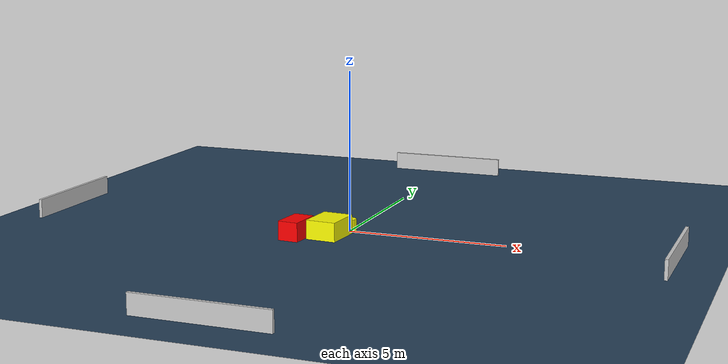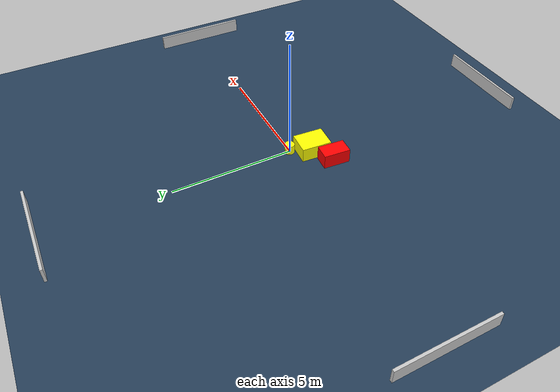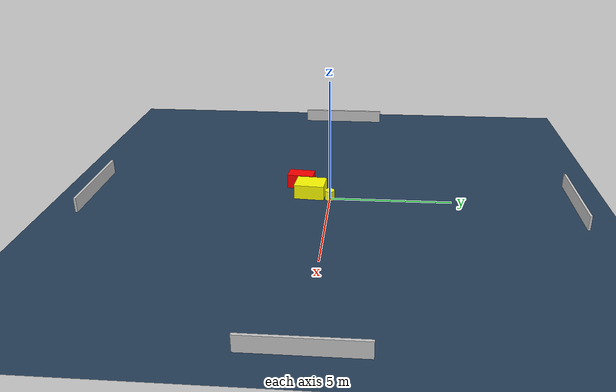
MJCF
<?xml version="1.0" ?>
<mujoco model="generated_environment">
  <option timestep="0.01" integrator="RK4" cone="elliptic"/>
  <default>
    <geom density="1"/>
  </default>
  <asset>
    <texture builtin="gradient" height="3072" name="skybox" rgb1="0.3 0.5 0.7" rgb2="0 0 0" type="skybox" width="512"/>
    <texture builtin="checker" height="300" name="groundplane" rgb1="0.2 0.3 0.4" rgb2="0.1 0.2 0.3" type="2d" width="300"/>
    <material name="groundplane" reflectance="0.2" texrepeat="5 5" texture="groundplane"/>
  </asset>
  <worldbody>
    <light dir="0 0 -1" directional="true" pos="0 0 1.5"/>
    <geom condim="3" friction="0.5 0.005 0.001" material="groundplane" name="floor" pos="0 0 0" size="0 0 0.05" type="plane"/>
    <body name="walls">
      <geom name="wall_1" condim="4" pos="-10.0 0.0 0.3" rgba="0.800000011920929 0.800000011920929 0.800000011920929 1.0" size="0.05 2.0 0.3" type="box"/>
      <geom name="wall_2" condim="4" pos="10.0 0.0 0.3" rgba="0.800000011920929 0.800000011920929 0.800000011920929 1.0" size="0.05 2.0 0.3" type="box"/>
      <geom name="wall_3" condim="4" pos="0.0 -10.0 0.3" rgba="0.800000011920929 0.800000011920929 0.800000011920929 1.0" size="2.0 0.05 0.3" type="box"/>
      <geom name="wall_4" condim="4" pos="0.0 10.0 0.3" rgba="0.800000011920929 0.800000011920929 0.800000011920929 1.0" size="2.0 0.05 0.3" type="box"/>
    </body>
    <body name="robot">
      <joint name="joint_x" type="slide" pos="0 0 0" axis="1 0 0"/>
      <joint name="joint_y" type="slide" pos="0 0 0" axis="0 1 0"/>
      <geom name="robot" type="cylinder" pos="0.0 0.0 0.2" size="0.2 0.2 0.0" mass="5.0" friction="1.0 0.005 0.0001" condim="4" rgba="1.0 1.0 0.0 1.0"/>
    </body>
    <body name="obstacle_1_movable">
      <geom name="obstacle_1_movable" condim="4" pos="-0.3523512997242288 -0.833666357574126 0.3" euler="0 0 266.01312657062505" friction="0.0 0.005 0.001" rgba="1.0 1.0 0.0 1.0" size="0.6195687685940352 0.477956846042064 0.3" type="box" mass="0.1"/>
      <joint type="free"/>
    </body>
    <body name="obstacle_2_static">
      <geom name="obstacle_2_static" condim="4" pos="-1.2482467996977302 -1.3215409382004797 0.3" euler="0 0 85.43723638901793" friction="0.0 0.005 0.001" rgba="1.0 0.0 0.0 1.0" size="0.5474003552217794 0.32392787891180247 0.3" type="box"/>
    </body>
  </worldbody>
  <actuator>
    <motor name="actuator_x" joint="joint_x" gear="1" ctrlrange="-1 1"/>
    <motor name="actuator_y" joint="joint_y" gear="1" ctrlrange="-1 1"/>
  </actuator>
</mujoco>
